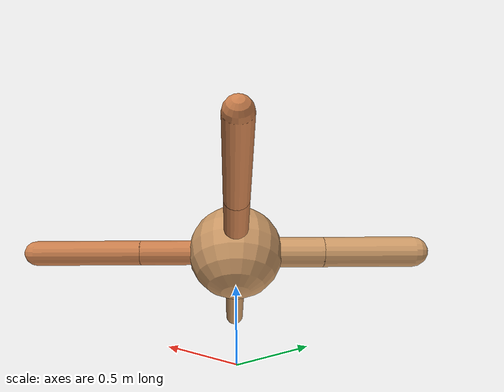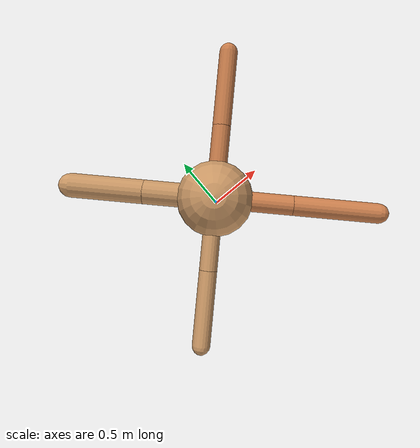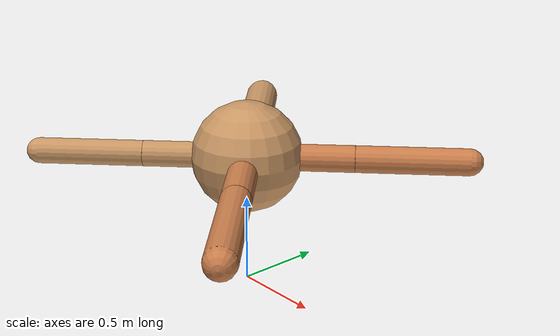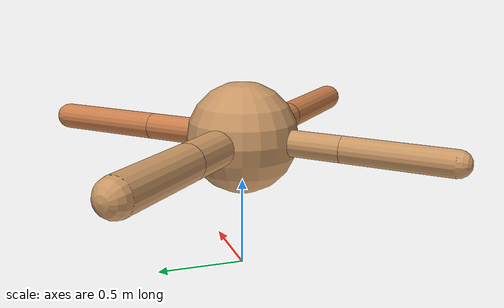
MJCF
<?xml version="1.0" ?>
<mujoco model="ant">

	<compiler angle="degree" coordinate="local" inertiafromgeom="true"/>

	<option integrator="RK4" timestep="0.01"/>

	<custom>

		<numeric data="0.0 0.0 0.55 1.0 0.0 0.0 0.0 0.0 1.0 0.0 -1.0 0.0 -1.0 0.0 1.0" name="init_qpos"/>

	</custom>

	<default>

		<joint armature="1" damping="1" limited="true"/>

		<geom conaffinity="0" condim="3" density="5.0" friction="1.5 0.1 0.1" margin="0.01" rgba="0.8 0.6 0.4 1"/>

	</default>

	<worldbody>

		<body name="torso" pos="0 0 0.75">

			<geom name="torso_geom" pos="0 0 0" size="0.31069228728570303" type="sphere"/>

			<!--joint armature="0" damping="0" limited="false" margin="0.01" name="root" pos="0 0 0" type="free"/-->

			<body name="front_left_leg" pos="0 0 0">

				<geom fromto="0 0 0 0.2 0.2 0" name="aux_1_geom" size="0.07537232932888126" type="capsule" rgba=".8 .5 .3 1"/>

				<body name="aux_1" pos="0.2 0.2 0">

					<joint axis="0 0 1" name="hip_1" pos="0.0 0.0 0.0" range="-40 40" type="hinge"/>

					<geom fromto="0 0 0 0.22047555994285803 0.22047555994285803 0" name="left_leg_geom" size="0.07537232932888126" type="capsule" rgba=".8 .5 .3 1"/>

					<body pos="0.22047555994285803 0.22047555994285803 0" name="front_left_foot">

						<joint axis="-1 1 0" name="ankle_1" pos="0.0 0.0 0.0" range="30 100" type="hinge"/>

						<geom fromto="0 0 0 0.44095111988571606 0.44095111988571606 0" name="left_ankle_geom" size="0.07537232932888126" type="capsule" rgba=".8 .5 .3 1"/>

					</body>

				</body>

			</body>

			<body name="front_right_leg" pos="0 0 0">

				<geom fromto="0 0 0 -0.2 0.2 0" name="aux_2_geom" size="0.09924468918437668" type="capsule"/>

				<body name="aux_2" pos="-0.2 0.2 0">

					<joint axis="0 0 1" name="hip_2" pos="0.0 0.0 0.0" range="-40 40" type="hinge"/>

					<geom fromto="0 0 0 -0.20855046533311455 0.20855046533311455 0" name="right_leg_geom" size="0.09924468918437668" type="capsule"/>

					<body pos="-0.20855046533311455 0.20855046533311455 0" name="front_right_foot">

						<joint axis="1 1 0" name="ankle_2" pos="0.0 0.0 0.0" range="-100 -30" type="hinge"/>

						<geom fromto="0 0 0 -0.4171009306662291 0.4171009306662291 0" name="right_ankle_geom" size="0.09924468918437668" type="capsule"/>

					</body>

				</body>

			</body>

			<body name="left_back_leg" pos="0 0 0">

				<geom fromto="0 0 0 -0.2 -0.2 0" name="aux_3_geom" size="0.07243478448182115" type="capsule"/>

				<body name="aux_3" pos="-0.2 -0.2 0">

					<joint axis="0 0 1" name="hip_3" pos="0.0 0.0 0.0" range="-40 40" type="hinge"/>

					<geom fromto="0 0 0 -0.20895749676666428 -0.20895749676666428 0" name="back_leg_geom" size="0.07243478448182115" type="capsule"/>

					<body pos="-0.20895749676666428 -0.20895749676666428 0" name="left_back_foot">

						<joint axis="-1 1 0" name="ankle_3" pos="0.0 0.0 0.0" range="-100 -30" type="hinge"/>

						<geom fromto="0 0 0 -0.41791499353332856 -0.41791499353332856 0" name="third_ankle_geom" size="0.07243478448182115" type="capsule"/>

					</body>

				</body>

			</body>

			<body name="right_back_leg" pos="0 0 0">

				<geom fromto="0 0 0 0.2 -0.2 0" name="aux_4_geom" size="0.08154963071509855" type="capsule" rgba=".8 .5 .3 1"/>

				<body name="aux_4" pos="0.2 -0.2 0">

					<joint axis="0 0 1" name="hip_4" pos="0.0 0.0 0.0" range="-40 40" type="hinge"/>

					<geom fromto="0 0 0 0.24496057464731794 -0.24496057464731794 0" name="rightback_leg_geom" size="0.08154963071509855" type="capsule" rgba=".8 .5 .3 1"/>

					<body pos="0.24496057464731794 -0.24496057464731794 0" name="right_back_foot">

						<joint axis="1 1 0" name="ankle_4" pos="0.0 0.0 0.0" range="30 100" type="hinge"/>

						<geom fromto="0 0 0 0.48992114929463587 -0.48992114929463587 0" name="fourth_ankle_geom" size="0.08154963071509855" type="capsule" rgba=".8 .5 .3 1"/>

					</body>

				</body>

			</body>

		</body>

	</worldbody>

	<actuator>

		<motor ctrllimited="true" ctrlrange="-1.0 1.0" joint="hip_4" gear="150"/>

		<motor ctrllimited="true" ctrlrange="-1.0 1.0" joint="ankle_4" gear="150"/>

		<motor ctrllimited="true" ctrlrange="-1.0 1.0" joint="hip_1" gear="150"/>

		<motor ctrllimited="true" ctrlrange="-1.0 1.0" joint="ankle_1" gear="150"/>

		<motor ctrllimited="true" ctrlrange="-1.0 1.0" joint="hip_2" gear="150"/>

		<motor ctrllimited="true" ctrlrange="-1.0 1.0" joint="ankle_2" gear="150"/>

		<motor ctrllimited="true" ctrlrange="-1.0 1.0" joint="hip_3" gear="150"/>

		<motor ctrllimited="true" ctrlrange="-1.0 1.0" joint="ankle_3" gear="150"/>

	</actuator>

</mujoco>
